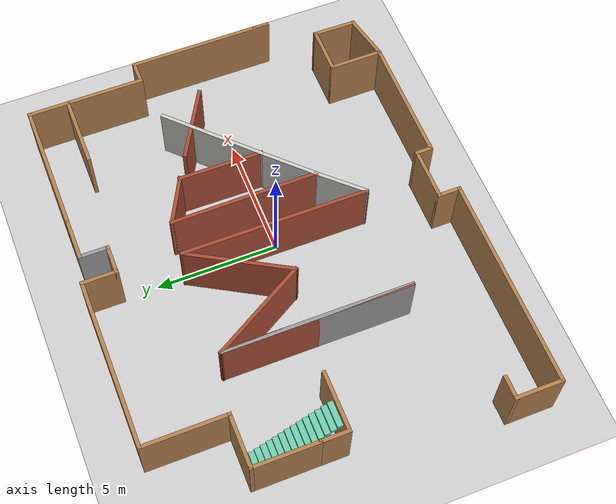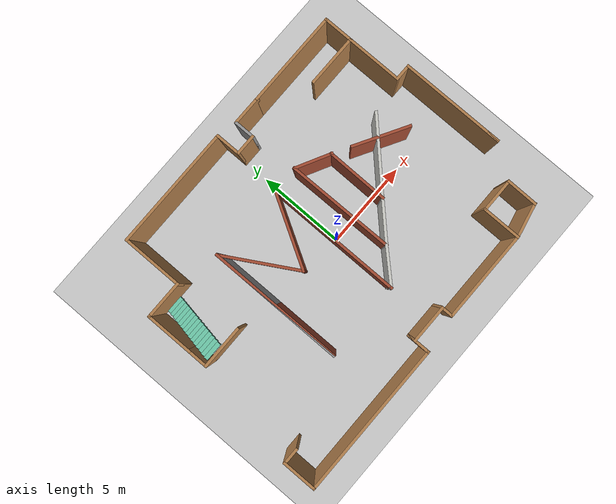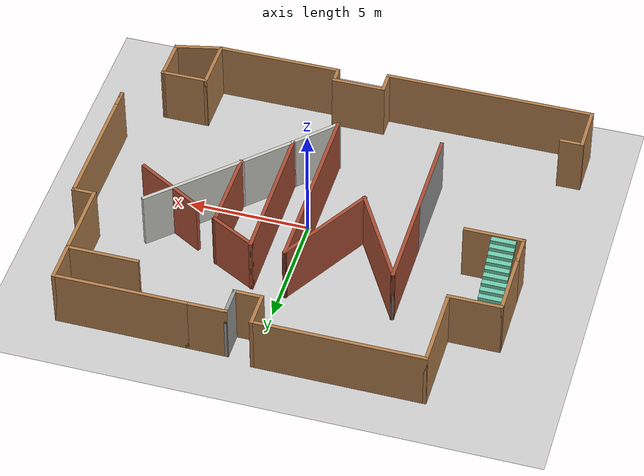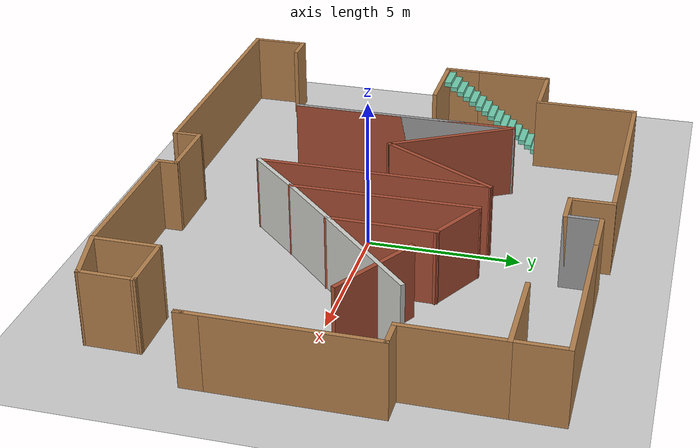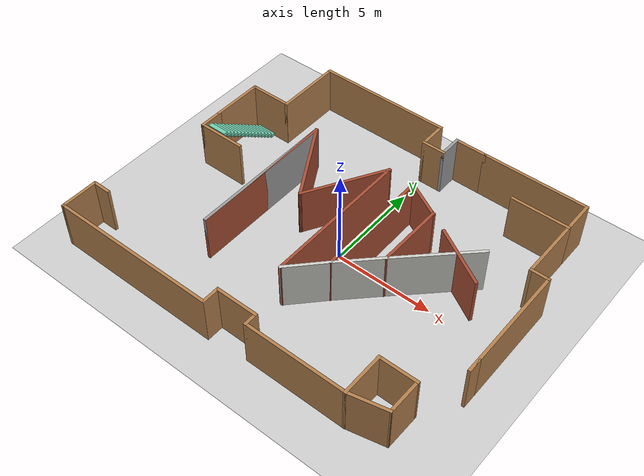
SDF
<sdf version="1.6">
 <world name="MAZE_MDX_MUHD">
  <model name="ground_plane">
   <static>1</static>
   <link name="link">
    <collision name="collision">
     <geometry><plane><normal>0 0 1</normal><size>100 100</size></plane></geometry>
     <surface>
      <contact><collide_bitmask>65535</collide_bitmask></contact>
      <friction><ode><mu>100</mu><mu2>50</mu2></ode></friction>
     </surface>
    </collision>
    <visual name="visual">
     <cast_shadows>0</cast_shadows>
     <geometry><plane><normal>0 0 1</normal><size>100 100</size></plane></geometry>
     <material>
      <script><uri>file://media/materials/scripts/gazebo.material</uri><name>Gazebo/Grey</name></script>
     </material>
    </visual>
   </link>
  </model>
  <light name="sun" type="directional">
   <pose>0 0 10 0 -0 0</pose>
   <diffuse>0.8 0.8 0.8 1</diffuse>
   <specular>0.2 0.2 0.2 1</specular>
   <attenuation>
    <range>1000</range>
    <constant>0.9</constant>
    <linear>0.01</linear>
    <quadratic>0.001</quadratic>
   </attenuation>
   <direction>-0.5 0.1 -0.9</direction>
  </light>
  <gravity>0 0 -9.8</gravity>
  <magnetic_field>6e-06 2.3e-05 -4.2e-05</magnetic_field>
  <atmosphere type="adiabatic"/>
  <physics name="default_physics" default="0" type="ode">
   <max_step_size>0.001</max_step_size>
   <real_time_factor>1</real_time_factor>
   <real_time_update_rate>1000</real_time_update_rate>
  </physics>
  <scene><ambient>0.4 0.4 0.4 1</ambient><background>0.7 0.7 0.7 1</background><shadows>1</shadows></scene>
  <audio><device>default</device></audio>
  <spherical_coordinates>
   <surface_model>EARTH_WGS84</surface_model>
   <latitude_deg>0</latitude_deg>
   <longitude_deg>0</longitude_deg>
   <elevation>0</elevation>
   <heading_deg>0</heading_deg>
  </spherical_coordinates>
  <model name="MDX_Maze">
   <pose>-0.58511 0.338749 0 0 -0 0</pose>
   <link name="Stairs_0">
    <visual name="Stairs_0_Visual_0">
     <pose>-7.65762 3.89363 0.083333 0 -0 0</pose>
     <geometry><box><size>1 0.233333 0.166667</size></box></geometry>
     <material>
      <script><uri>file://media/materials/scripts/gazebo.material</uri><name>Gazebo/Grey</name></script>
      <ambient>0.435294 0.796078 0.67451 1</ambient>
     </material>
     <meta><layer>0</layer></meta>
    </visual>
    <collision name="Stairs_0_Collision_0">
     <geometry><box><size>1 0.233333 0.166667</size></box></geometry>
     <pose>-7.65762 3.89363 0.083333 0 -0 0</pose>
    </collision>
    <visual name="Stairs_0_Visual_1">
     <pose>-7.65762 3.6603 0.25 0 -0 0</pose>
     <geometry><box><size>1 0.233333 0.166667</size></box></geometry>
     <material>
      <script><uri>file://media/materials/scripts/gazebo.material</uri><name>Gazebo/Grey</name></script>
      <ambient>0.435294 0.796078 0.67451 1</ambient>
     </material>
     <meta><layer>0</layer></meta>
    </visual>
    <collision name="Stairs_0_Collision_1">
     <geometry><box><size>1 0.233333 0.166667</size></box></geometry>
     <pose>-7.65762 3.6603 0.25 0 -0 0</pose>
    </collision>
    <visual name="Stairs_0_Visual_2">
     <pose>-7.65762 3.42696 0.416667 0 -0 0</pose>
     <geometry><box><size>1 0.233333 0.166667</size></box></geometry>
     <material>
      <script><uri>file://media/materials/scripts/gazebo.material</uri><name>Gazebo/Grey</name></script>
      <ambient>0.435294 0.796078 0.67451 1</ambient>
     </material>
     <meta><layer>0</layer></meta>
    </visual>
    <collision name="Stairs_0_Collision_2">
     <geometry><box><size>1 0.233333 0.166667</size></box></geometry>
     <pose>-7.65762 3.42696 0.416667 0 -0 0</pose>
    </collision>
    <visual name="Stairs_0_Visual_3">
     <pose>-7.65762 3.19363 0.583333 0 -0 0</pose>
     <geometry><box><size>1 0.233333 0.166667</size></box></geometry>
     <material>
      <script><uri>file://media/materials/scripts/gazebo.material</uri><name>Gazebo/Grey</name></script>
      <ambient>0.435294 0.796078 0.67451 1</ambient>
     </material>
     <meta><layer>0</layer></meta>
    </visual>
    <collision name="Stairs_0_Collision_3">
     <geometry><box><size>1 0.233333 0.166667</size></box></geometry>
     <pose>-7.65762 3.19363 0.583333 0 -0 0</pose>
    </collision>
    <visual name="Stairs_0_Visual_4">
     <pose>-7.65762 2.9603 0.75 0 -0 0</pose>
     <geometry><box><size>1 0.233333 0.166667</size></box></geometry>
     <material>
      <script><uri>file://media/materials/scripts/gazebo.material</uri><name>Gazebo/Grey</name></script>
      <ambient>0.435294 0.796078 0.67451 1</ambient>
     </material>
     <meta><layer>0</layer></meta>
    </visual>
    <collision name="Stairs_0_Collision_4">
     <geometry><box><size>1 0.233333 0.166667</size></box></geometry>
     <pose>-7.65762 2.9603 0.75 0 -0 0</pose>
    </collision>
    <visual name="Stairs_0_Visual_5">
     <pose>-7.65762 2.72696 0.916667 0 -0 0</pose>
     <geometry><box><size>1 0.233333 0.166667</size></box></geometry>
     <material>
      <script><uri>file://media/materials/scripts/gazebo.material</uri><name>Gazebo/Grey</name></script>
      <ambient>0.435294 0.796078 0.67451 1</ambient>
     </material>
     <meta><layer>0</layer></meta>
    </visual>
    <collision name="Stairs_0_Collision_5">
     <geometry><box><size>1 0.233333 0.166667</size></box></geometry>
     <pose>-7.65762 2.72696 0.916667 0 -0 0</pose>
    </collision>
    <visual name="Stairs_0_Visual_6">
     <pose>-7.65762 2.49363 1.08333 0 -0 0</pose>
     <geometry><box><size>1 0.233333 0.166667</size></box></geometry>
     <material>
      <script><uri>file://media/materials/scripts/gazebo.material</uri><name>Gazebo/Grey</name></script>
      <ambient>0.435294 0.796078 0.67451 1</ambient>
     </material>
     <meta><layer>0</layer></meta>
    </visual>
    <collision name="Stairs_0_Collision_6">
     <geometry><box><size>1 0.233333 0.166667</size></box></geometry>
     <pose>-7.65762 2.49363 1.08333 0 -0 0</pose>
    </collision>
    <visual name="Stairs_0_Visual_7">
     <pose>-7.65762 2.2603 1.25 0 -0 0</pose>
     <geometry><box><size>1 0.233333 0.166667</size></box></geometry>
     <material>
      <script><uri>file://media/materials/scripts/gazebo.material</uri><name>Gazebo/Grey</name></script>
      <ambient>0.435294 0.796078 0.67451 1</ambient>
     </material>
     <meta><layer>0</layer></meta>
    </visual>
    <collision name="Stairs_0_Collision_7">
     <geometry><box><size>1 0.233333 0.166667</size></box></geometry>
     <pose>-7.65762 2.2603 1.25 0 -0 0</pose>
    </collision>
    <visual name="Stairs_0_Visual_8">
     <pose>-7.65762 2.02696 1.41667 0 -0 0</pose>
     <geometry><box><size>1 0.233333 0.166667</size></box></geometry>
     <material>
      <script><uri>file://media/materials/scripts/gazebo.material</uri><name>Gazebo/Grey</name></script>
      <ambient>0.435294 0.796078 0.67451 1</ambient>
     </material>
     <meta><layer>0</layer></meta>
    </visual>
    <collision name="Stairs_0_Collision_8">
     <geometry><box><size>1 0.233333 0.166667</size></box></geometry>
     <pose>-7.65762 2.02696 1.41667 0 -0 0</pose>
    </collision>
    <visual name="Stairs_0_Visual_9">
     <pose>-7.65762 1.79363 1.58333 0 -0 0</pose>
     <geometry><box><size>1 0.233333 0.166667</size></box></geometry>
     <material>
      <script><uri>file://media/materials/scripts/gazebo.material</uri><name>Gazebo/Grey</name></script>
      <ambient>0.435294 0.796078 0.67451 1</ambient>
     </material>
     <meta><layer>0</layer></meta>
    </visual>
    <collision name="Stairs_0_Collision_9">
     <geometry><box><size>1 0.233333 0.166667</size></box></geometry>
     <pose>-7.65762 1.79363 1.58333 0 -0 0</pose>
    </collision>
    <visual name="Stairs_0_Visual_10">
     <pose>-7.65762 1.5603 1.75 0 -0 0</pose>
     <geometry><box><size>1 0.233333 0.166667</size></box></geometry>
     <material>
      <script><uri>file://media/materials/scripts/gazebo.material</uri><name>Gazebo/Grey</name></script>
      <ambient>0.435294 0.796078 0.67451 1</ambient>
     </material>
     <meta><layer>0</layer></meta>
    </visual>
    <collision name="Stairs_0_Collision_10">
     <geometry><box><size>1 0.233333 0.166667</size></box></geometry>
     <pose>-7.65762 1.5603 1.75 0 -0 0</pose>
    </collision>
    <visual name="Stairs_0_Visual_11">
     <pose>-7.65762 1.32696 1.91667 0 -0 0</pose>
     <geometry><box><size>1 0.233333 0.166667</size></box></geometry>
     <material>
      <script><uri>file://media/materials/scripts/gazebo.material</uri><name>Gazebo/Grey</name></script>
      <ambient>0.435294 0.796078 0.67451 1</ambient>
     </material>
     <meta><layer>0</layer></meta>
    </visual>
    <collision name="Stairs_0_Collision_11">
     <geometry><box><size>1 0.233333 0.166667</size></box></geometry>
     <pose>-7.65762 1.32696 1.91667 0 -0 0</pose>
    </collision>
    <visual name="Stairs_0_Visual_12">
     <pose>-7.65762 1.09363 2.08333 0 -0 0</pose>
     <geometry><box><size>1 0.233333 0.166667</size></box></geometry>
     <material>
      <script><uri>file://media/materials/scripts/gazebo.material</uri><name>Gazebo/Grey</name></script>
      <ambient>0.435294 0.796078 0.67451 1</ambient>
     </material>
     <meta><layer>0</layer></meta>
    </visual>
    <collision name="Stairs_0_Collision_12">
     <geometry><box><size>1 0.233333 0.166667</size></box></geometry>
     <pose>-7.65762 1.09363 2.08333 0 -0 0</pose>
    </collision>
    <visual name="Stairs_0_Visual_13">
     <pose>-7.65762 0.860297 2.25 0 -0 0</pose>
     <geometry><box><size>1 0.233333 0.166667</size></box></geometry>
     <material>
      <script><uri>file://media/materials/scripts/gazebo.material</uri><name>Gazebo/Grey</name></script>
      <ambient>0.435294 0.796078 0.67451 1</ambient>
     </material>
     <meta><layer>0</layer></meta>
    </visual>
    <collision name="Stairs_0_Collision_13">
     <geometry><box><size>1 0.233333 0.166667</size></box></geometry>
     <pose>-7.65762 0.860297 2.25 0 -0 0</pose>
    </collision>
    <visual name="Stairs_0_Visual_14">
     <pose>-7.65762 0.626963 2.41667 0 -0 0</pose>
     <geometry><box><size>1 0.233333 0.166667</size></box></geometry>
     <material>
      <script><uri>file://media/materials/scripts/gazebo.material</uri><name>Gazebo/Grey</name></script>
      <ambient>0.435294 0.796078 0.67451 1</ambient>
     </material>
     <meta><layer>0</layer></meta>
    </visual>
    <collision name="Stairs_0_Collision_14">
     <geometry><box><size>1 0.233333 0.166667</size></box></geometry>
     <pose>-7.65762 0.626963 2.41667 0 -0 0</pose>
    </collision>
   </link>
   <link name="Wall_10">
    <collision name="Wall_10_Collision">
     <geometry><box><size>7 0.15 2.5</size></box></geometry>
     <pose>0 0 1.25 0 -0 0</pose>
    </collision>
    <visual name="Wall_10_Visual">
     <pose>0 0 1.25 0 -0 0</pose>
     <geometry><box><size>7 0.15 2.5</size></box></geometry>
     <material>
      <script><uri>file://media/materials/scripts/gazebo.material</uri><name>Gazebo/Wood</name></script>
      <ambient>1 1 1 1</ambient>
     </material>
     <meta><layer>0</layer></meta>
    </visual>
    <pose>-2.8869 7.43809 0 0 -0 0</pose>
   </link>
   <link name="Wall_11">
    <collision name="Wall_11_Collision">
     <geometry><box><size>1.5 0.15 2.5</size></box></geometry>
     <pose>0 0 1.25 0 -0 0</pose>
    </collision>
    <visual name="Wall_11_Visual">
     <pose>0 0 1.25 0 -0 0</pose>
     <geometry><box><size>1.5 0.15 2.5</size></box></geometry>
     <material>
      <script><uri>file://media/materials/scripts/gazebo.material</uri><name>Gazebo/Wood</name></script>
      <ambient>1 1 1 1</ambient>
     </material>
     <meta><layer>0</layer></meta>
    </visual>
    <pose>0.538101 6.76309 0 0 -0 -1.5708</pose>
   </link>
   <link name="Wall_12">
    <collision name="Wall_12_Collision">
     <geometry><box><size>1.25 0.15 2.5</size></box></geometry>
     <pose>0 0 1.25 0 -0 0</pose>
    </collision>
    <visual name="Wall_12_Visual">
     <pose>0 0 1.25 0 -0 0</pose>
     <geometry><box><size>1.25 0.15 2.5</size></box></geometry>
     <material>
      <script><uri>file://media/materials/scripts/gazebo.material</uri><name>Gazebo/Wood</name></script>
      <ambient>1 1 1 1</ambient>
     </material>
     <meta><layer>0</layer></meta>
    </visual>
    <pose>1.0881 6.08809 0 0 -0 0</pose>
   </link>
   <link name="Wall_13">
    <collision name="Wall_13_Collision">
     <geometry><box><size>1.25 0.15 2.5</size></box></geometry>
     <pose>0 0 1.25 0 -0 0</pose>
    </collision>
    <visual name="Wall_13_Visual">
     <pose>0 0 1.25 0 -0 0</pose>
     <geometry><box><size>1.25 0.15 2.5</size></box></geometry>
     <material>
      <script><uri>file://media/materials/scripts/gazebo.material</uri><name>Gazebo/Grey</name></script>
      <ambient>1 1 1 1</ambient>
     </material>
     <meta><layer>0</layer></meta>
    </visual>
    <pose>1.6381 6.63809 0 0 -0 1.5708</pose>
   </link>
   <link name="Wall_14">
    <collision name="Wall_14_Collision">
     <geometry><box><size>1.75 0.15 2.5</size></box></geometry>
     <pose>0 0 1.25 0 -0 0</pose>
    </collision>
    <visual name="Wall_14_Visual">
     <pose>0 0 1.25 0 -0 0</pose>
     <geometry><box><size>1.75 0.15 2.5</size></box></geometry>
     <material>
      <script><uri>file://media/materials/scripts/gazebo.material</uri><name>Gazebo/Wood</name></script>
      <ambient>1 1 1 1</ambient>
     </material>
     <meta><layer>0</layer></meta>
    </visual>
    <pose>2.4381 7.18809 0 0 -0 0</pose>
   </link>
   <link name="Wall_15">
    <collision name="Wall_15_Collision">
     <geometry><box><size>5.5 0.15 2.5</size></box></geometry>
     <pose>0 0 1.25 0 -0 0</pose>
    </collision>
    <visual name="Wall_15_Visual">
     <pose>0 0 1.25 0 -0 0</pose>
     <geometry><box><size>5.5 0.15 2.5</size></box></geometry>
     <material>
      <script><uri>file://media/materials/scripts/gazebo.material</uri><name>Gazebo/Wood</name></script>
      <ambient>1 1 1 1</ambient>
     </material>
     <meta><layer>0</layer></meta>
    </visual>
    <pose>5.9131 7.18809 0 0 -0 0</pose>
   </link>
   <link name="Wall_16">
    <collision name="Wall_16_Collision">
     <geometry><box><size>1.75 0.15 2.5</size></box></geometry>
     <pose>0 0 1.25 0 -0 0</pose>
    </collision>
    <visual name="Wall_16_Visual">
     <pose>0 0 1.25 0 -0 0</pose>
     <geometry><box><size>1.75 0.15 2.5</size></box></geometry>
     <material>
      <script><uri>file://media/materials/scripts/gazebo.material</uri><name>Gazebo/Wood</name></script>
      <ambient>1 1 1 1</ambient>
     </material>
     <meta><layer>0</layer></meta>
    </visual>
    <pose>8.5881 6.38809 0 0 -0 -1.5708</pose>
   </link>
   <link name="Wall_17">
    <collision name="Wall_17_Collision">
     <geometry><box><size>3 0.15 2.5</size></box></geometry>
     <pose>0 0 1.25 0 -0 0</pose>
    </collision>
    <visual name="Wall_17_Visual">
     <pose>0 0 1.25 0 -0 0</pose>
     <geometry><box><size>3 0.15 2.5</size></box></geometry>
     <material>
      <script><uri>file://media/materials/scripts/gazebo.material</uri><name>Gazebo/Wood</name></script>
      <ambient>1 1 1 1</ambient>
     </material>
     <meta><layer>0</layer></meta>
    </visual>
    <pose>7.1631 5.58809 0 0 -0 3.14159</pose>
   </link>
   <link name="Wall_19">
    <collision name="Wall_19_Collision">
     <geometry><box><size>3.25 0.15 2.5</size></box></geometry>
     <pose>0 0 1.25 0 -0 0</pose>
    </collision>
    <visual name="Wall_19_Visual">
     <pose>0 0 1.25 0 -0 0</pose>
     <geometry><box><size>3.25 0.15 2.5</size></box></geometry>
     <material>
      <script><uri>file://media/materials/scripts/gazebo.material</uri><name>Gazebo/Wood</name></script>
      <ambient>1 1 1 1</ambient>
     </material>
     <meta><layer>0</layer></meta>
    </visual>
    <pose>8.5881 4.03808 0 0 -0 -1.5708</pose>
   </link>
   <link name="Wall_20">
    <collision name="Wall_20_Collision">
     <geometry><box><size>1 0.15 2.5</size></box></geometry>
     <pose>0 0 1.25 0 -0 0</pose>
    </collision>
    <visual name="Wall_20_Visual">
     <pose>0 0 1.25 0 -0 0</pose>
     <geometry><box><size>1 0.15 2.5</size></box></geometry>
     <material>
      <script><uri>file://media/materials/scripts/gazebo.material</uri><name>Gazebo/Wood</name></script>
      <ambient>1 1 1 1</ambient>
     </material>
     <meta><layer>0</layer></meta>
    </visual>
    <pose>9.0131 2.48809 0 0 -0 0</pose>
   </link>
   <link name="Wall_21">
    <collision name="Wall_21_Collision">
     <geometry><box><size>6 0.15 2.5</size></box></geometry>
     <pose>0 0 1.25 0 -0 0</pose>
    </collision>
    <visual name="Wall_21_Visual">
     <pose>0 0 1.25 0 -0 0</pose>
     <geometry><box><size>6 0.15 2.5</size></box></geometry>
     <material>
      <script><uri>file://media/materials/scripts/gazebo.material</uri><name>Gazebo/Wood</name></script>
      <ambient>1 1 1 1</ambient>
     </material>
     <meta><layer>0</layer></meta>
    </visual>
    <pose>9.4381 -0.436915 0 0 -0 -1.5708</pose>
   </link>
   <link name="Wall_22">
    <collision name="Wall_22_Collision">
     <geometry><box><size>0.75 0.15 2.5</size></box></geometry>
     <pose>0 0 1.25 0 -0 0</pose>
    </collision>
    <visual name="Wall_22_Visual">
     <pose>0 0 1.25 0 -0 0</pose>
     <geometry><box><size>0.75 0.15 2.5</size></box></geometry>
     <material>
      <script><uri>file://media/materials/scripts/gazebo.material</uri><name>Gazebo/Wood</name></script>
      <ambient>1 1 1 1</ambient>
     </material>
     <meta><layer>0</layer></meta>
    </visual>
    <pose>9.4381 -3.06191 0 0 -0 1.5708</pose>
   </link>
   <link name="Wall_25">
    <collision name="Wall_25_Collision">
     <geometry><box><size>1 0.15 2.5</size></box></geometry>
     <pose>0 0 1.25 0 -0 0</pose>
    </collision>
    <visual name="Wall_25_Visual">
     <pose>0 0 1.25 0 -0 0</pose>
     <geometry><box><size>1 0.15 2.5</size></box></geometry>
     <material>
      <script><uri>file://media/materials/scripts/gazebo.material</uri><name>Gazebo/Wood</name></script>
      <ambient>1 1 1 1</ambient>
     </material>
     <meta><layer>0</layer></meta>
    </visual>
    <pose>-9.0131 -5.58809 0 0 -0 3.14159</pose>
   </link>
   <link name="Wall_26">
    <collision name="Wall_26_Collision">
     <geometry><box><size>2 0.15 2.5</size></box></geometry>
     <pose>0 0 1.25 0 -0 0</pose>
    </collision>
    <visual name="Wall_26_Visual">
     <pose>0 0 1.25 0 -0 0</pose>
     <geometry><box><size>2 0.15 2.5</size></box></geometry>
     <material>
      <script><uri>file://media/materials/scripts/gazebo.material</uri><name>Gazebo/Wood</name></script>
      <ambient>1 1 1 1</ambient>
     </material>
     <meta><layer>0</layer></meta>
    </visual>
    <pose>-9.4381 -6.51309 0 0 -0 -1.5708</pose>
   </link>
   <link name="Wall_27">
    <collision name="Wall_27_Collision">
     <geometry><box><size>8.75 0.15 2.5</size></box></geometry>
     <pose>0 0 1.25 0 -0 0</pose>
    </collision>
    <visual name="Wall_27_Visual">
     <pose>0 0 1.25 0 -0 0</pose>
     <geometry><box><size>8.75 0.15 2.5</size></box></geometry>
     <material>
      <script><uri>file://media/materials/scripts/gazebo.material</uri><name>Gazebo/Wood</name></script>
      <ambient>1 1 1 1</ambient>
     </material>
     <meta><layer>0</layer></meta>
    </visual>
    <pose>-5.1381 -7.43809 0 0 -0 0</pose>
   </link>
   <link name="Wall_28">
    <collision name="Wall_28_Collision">
     <geometry><box><size>1 0.15 2.5</size></box></geometry>
     <pose>0 0 1.25 0 -0 0</pose>
    </collision>
    <visual name="Wall_28_Visual">
     <pose>0 0 1.25 0 -0 0</pose>
     <geometry><box><size>1 0.15 2.5</size></box></geometry>
     <material>
      <script><uri>file://media/materials/scripts/gazebo.material</uri><name>Gazebo/Wood</name></script>
      <ambient>1 1 1 1</ambient>
     </material>
     <meta><layer>0</layer></meta>
    </visual>
    <pose>-0.838102 -7.01309 0 0 -0 1.5708</pose>
   </link>
   <link name="Wall_29">
    <collision name="Wall_29_Collision">
     <geometry><box><size>2.25 0.15 2.5</size></box></geometry>
     <pose>0 0 1.25 0 -0 0</pose>
    </collision>
    <visual name="Wall_29_Visual">
     <pose>0 0 1.25 0 -0 0</pose>
     <geometry><box><size>2.25 0.15 2.5</size></box></geometry>
     <material>
      <script><uri>file://media/materials/scripts/gazebo.material</uri><name>Gazebo/Wood</name></script>
      <ambient>1 1 1 1</ambient>
     </material>
     <meta><layer>0</layer></meta>
    </visual>
    <pose>0.211898 -6.58809 0 0 -0 0</pose>
   </link>
   <link name="Wall_30">
    <collision name="Wall_30_Collision">
     <geometry><box><size>0.75 0.15 2.5</size></box></geometry>
     <pose>0 0 1.25 0 -0 0</pose>
    </collision>
    <visual name="Wall_30_Visual">
     <pose>0 0 1.25 0 -0 0</pose>
     <geometry><box><size>0.75 0.15 2.5</size></box></geometry>
     <material>
      <script><uri>file://media/materials/scripts/gazebo.material</uri><name>Gazebo/Wood</name></script>
      <ambient>1 1 1 1</ambient>
     </material>
     <meta><layer>0</layer></meta>
    </visual>
    <pose>1.2619 -6.88809 0 0 -0 -1.5708</pose>
   </link>
   <link name="Wall_31">
    <collision name="Wall_31_Collision">
     <geometry><box><size>5.25 0.15 2.5</size></box></geometry>
     <pose>0 0 1.25 0 -0 0</pose>
    </collision>
    <visual name="Wall_31_Visual">
     <pose>0 0 1.25 0 -0 0</pose>
     <geometry><box><size>5.25 0.15 2.5</size></box></geometry>
     <material>
      <script><uri>file://media/materials/scripts/gazebo.material</uri><name>Gazebo/Wood</name></script>
      <ambient>1 1 1 1</ambient>
     </material>
     <meta><layer>0</layer></meta>
    </visual>
    <pose>3.8119 -7.18809 0 0 -0 0</pose>
   </link>
   <link name="Wall_32">
    <collision name="Wall_32_Collision">
     <geometry><box><size>2.25 0.15 2.5</size></box></geometry>
     <pose>0 0 1.25 0 -0 0</pose>
    </collision>
    <visual name="Wall_32_Visual">
     <pose>0 0 1.25 0 -0 0</pose>
     <geometry><box><size>2.25 0.15 2.5</size></box></geometry>
     <material>
      <script><uri>file://media/materials/scripts/gazebo.material</uri><name>Gazebo/Wood</name></script>
      <ambient>1 1 1 1</ambient>
     </material>
     <meta><layer>0</layer></meta>
    </visual>
    <pose>6.3619 -6.13809 0 0 -0 1.5708</pose>
   </link>
   <link name="Wall_33">
    <collision name="Wall_33_Collision">
     <geometry><box><size>2 0.15 2.5</size></box></geometry>
     <pose>0 0 1.25 0 -0 0</pose>
    </collision>
    <visual name="Wall_33_Visual">
     <pose>0 0 1.25 0 -0 0</pose>
     <geometry><box><size>2 0.15 2.5</size></box></geometry>
     <material>
      <script><uri>file://media/materials/scripts/gazebo.material</uri><name>Gazebo/Wood</name></script>
      <ambient>1 1 1 1</ambient>
     </material>
     <meta><layer>0</layer></meta>
    </visual>
    <pose>7.2869 -5.08809 0 0 -0 0</pose>
   </link>
   <link name="Wall_34">
    <collision name="Wall_34_Collision">
     <geometry><box><size>1.83866 0.15 2.5</size></box></geometry>
     <pose>0 0 1.25 0 -0 0</pose>
    </collision>
    <visual name="Wall_34_Visual">
     <pose>0 0 1.25 0 -0 0</pose>
     <geometry><box><size>1.83866 0.15 2.5</size></box></geometry>
     <material>
      <script><uri>file://media/materials/scripts/gazebo.material</uri><name>Gazebo/Wood</name></script>
      <ambient>1 1 1 1</ambient>
     </material>
     <meta><layer>0</layer></meta>
    </visual>
    <pose>8.20245 -5.93236 0 0 -0 -1.58199</pose>
   </link>
   <link name="Wall_38">
    <collision name="Wall_38_Collision">
     <geometry><box><size>2.02676 0.15 2.5</size></box></geometry>
     <pose>0 0 1.25 0 -0 0</pose>
    </collision>
    <visual name="Wall_38_Visual">
     <pose>0 0 1.25 0 -0 0</pose>
     <geometry><box><size>2.02676 0.15 2.5</size></box></geometry>
     <material>
      <script><uri>file://media/materials/scripts/gazebo.material</uri><name>Gazebo/Wood</name></script>
      <ambient>1 1 1 1</ambient>
     </material>
     <meta><layer>0</layer></meta>
    </visual>
    <pose>7.27745 -6.98236 0 0 -0 -2.92057</pose>
   </link>
   <link name="Wall_40">
    <collision name="Wall_40_Collision">
     <geometry><box><size>1.25 0.15 2.5</size></box></geometry>
     <pose>0 0 1.25 0 -0 0</pose>
    </collision>
    <visual name="Wall_40_Visual">
     <pose>0 0 1.25 0 -0 0</pose>
     <geometry><box><size>1.25 0.15 2.5</size></box></geometry>
     <material>
      <script><uri>file://media/materials/scripts/gazebo.material</uri><name>Gazebo/Wood</name></script>
      <ambient>1 1 1 1</ambient>
     </material>
     <meta><layer>0</layer></meta>
    </visual>
    <pose>-8.4119 0.938085 0 0 -0 -1.5708</pose>
   </link>
   <link name="Wall_41">
    <collision name="Wall_41_Collision">
     <geometry><box><size>2.5 0.15 2.5</size></box></geometry>
     <pose>0 0 1.25 0 -0 0</pose>
    </collision>
    <visual name="Wall_41_Visual">
     <pose>0 0 1.25 0 -0 0</pose>
     <geometry><box><size>2.5 0.15 2.5</size></box></geometry>
     <material>
      <script><uri>file://media/materials/scripts/gazebo.material</uri><name>Gazebo/Wood</name></script>
      <ambient>1 1 1 1</ambient>
     </material>
     <meta><layer>0</layer></meta>
    </visual>
    <pose>-7.2369 0.388085 0 0 -0 0</pose>
   </link>
   <link name="Wall_43">
    <collision name="Wall_43_Collision">
     <geometry><box><size>7.75 0.15 2.5</size></box></geometry>
     <pose>0 0 1.25 0 -0 0</pose>
    </collision>
    <visual name="Wall_43_Visual">
     <pose>0 0 1.25 0 -0 0</pose>
     <geometry><box><size>7.75 0.15 2.5</size></box></geometry>
     <material>
      <script><uri>file://media/materials/scripts/gazebo.material</uri><name>Gazebo/Grey</name></script>
      <ambient>1 1 1 1</ambient>
     </material>
     <meta><layer>0</layer></meta>
    </visual>
    <pose>-3.97617 -0.245125 0 0 -0 -1.5708</pose>
   </link>
   <link name="Wall_44">
    <collision name="Wall_44_Collision">
     <geometry><box><size>7.75 0.15 2.5</size></box></geometry>
     <pose>0 0 1.25 0 -0 0</pose>
    </collision>
    <visual name="Wall_44_Visual">
     <pose>0 0 1.25 0 -0 0</pose>
     <geometry><box><size>7.75 0.15 2.5</size></box></geometry>
     <material>
      <script><uri>file://media/materials/scripts/gazebo.material</uri><name>Gazebo/Bricks</name></script>
      <ambient>1 1 1 1</ambient>
     </material>
     <meta><layer>0</layer></meta>
    </visual>
    <pose>-3.97617 -0.245125 0 0 -0 1.5708</pose>
   </link>
   <link name="Wall_45">
    <collision name="Wall_45_Collision">
     <geometry><box><size>4.5 0.15 2.5</size></box></geometry>
     <pose>0 0 1.25 0 -0 0</pose>
    </collision>
    <visual name="Wall_45_Visual">
     <pose>0 0 1.25 0 -0 0</pose>
     <geometry><box><size>4.5 0.15 2.5</size></box></geometry>
     <material>
      <script><uri>file://media/materials/scripts/gazebo.material</uri><name>Gazebo/Bricks</name></script>
      <ambient>1 1 1 1</ambient>
     </material>
     <meta><layer>0</layer></meta>
    </visual>
    <pose>-2.88867 1.67127 0 0 -0 -1.0472</pose>
   </link>
   <link name="Wall_46">
    <collision name="Wall_46_Collision">
     <geometry><box><size>4.5 0.15 2.5</size></box></geometry>
     <pose>0 0 1.25 0 -0 0</pose>
    </collision>
    <visual name="Wall_46_Visual">
     <pose>0 0 1.25 0 -0 0</pose>
     <geometry><box><size>4.5 0.15 2.5</size></box></geometry>
     <material>
      <script><uri>file://media/materials/scripts/gazebo.material</uri><name>Gazebo/Bricks</name></script>
      <ambient>1 1 1 1</ambient>
     </material>
     <meta><layer>0</layer></meta>
    </visual>
    <pose>-0.713666 1.67127 0 0 -0 1.0472</pose>
   </link>
   <link name="Wall_47">
    <collision name="Wall_47_Collision">
     <geometry><box><size>7.75 0.15 2.5</size></box></geometry>
     <pose>0 0 1.25 0 -0 0</pose>
    </collision>
    <visual name="Wall_47_Visual">
     <pose>0 0 1.25 0 -0 0</pose>
     <geometry><box><size>7.75 0.15 2.5</size></box></geometry>
     <material>
      <script><uri>file://media/materials/scripts/gazebo.material</uri><name>Gazebo/Bricks</name></script>
      <ambient>1 1 1 1</ambient>
     </material>
     <meta><layer>0</layer></meta>
    </visual>
    <pose>0.373834 -0.245125 0 0 -0 -1.5708</pose>
   </link>
   <link name="Wall_5">
    <collision name="Wall_5_Collision">
     <geometry><box><size>2.75 0.15 2.5</size></box></geometry>
     <pose>0 0 1.25 0 -0 0</pose>
    </collision>
    <visual name="Wall_5_Visual">
     <pose>0 0 1.25 0 -0 0</pose>
     <geometry><box><size>2.75 0.15 2.5</size></box></geometry>
     <material>
      <script><uri>file://media/materials/scripts/gazebo.material</uri><name>Gazebo/Wood</name></script>
      <ambient>1 1 1 1</ambient>
     </material>
     <meta><layer>0</layer></meta>
    </visual>
    <pose>-8.4119 2.78809 0 0 -0 -1.5708</pose>
   </link>
   <link name="Wall_50">
    <collision name="Wall_50_Collision">
     <geometry><box><size>6.13172 0.15 2.5</size></box></geometry>
     <pose>0 0 1.25 0 -0 0</pose>
    </collision>
    <visual name="Wall_50_Visual">
     <pose>0 0 1.25 0 -0 0</pose>
     <geometry><box><size>6.13172 0.15 2.5</size></box></geometry>
     <material>
      <script><uri>file://media/materials/scripts/gazebo.material</uri><name>Gazebo/Bricks</name></script>
      <ambient>1 1 1 1</ambient>
     </material>
     <meta><layer>0</layer></meta>
    </visual>
    <pose>1.80958 0.481862 0 0 -0 1.57818</pose>
   </link>
   <link name="Wall_51">
    <collision name="Wall_51_Collision">
     <geometry><box><size>2.13583 0.15 2.5</size></box></geometry>
     <pose>0 0 1.25 0 -0 0</pose>
    </collision>
    <visual name="Wall_51_Visual">
     <pose>0 0 1.25 0 -0 0</pose>
     <geometry><box><size>2.13583 0.15 2.5</size></box></geometry>
     <material>
      <script><uri>file://media/materials/scripts/gazebo.material</uri><name>Gazebo/Bricks</name></script>
      <ambient>1 1 1 1</ambient>
     </material>
     <meta><layer>0</layer></meta>
    </visual>
    <pose>2.6884 2.98537 0 0 -0 -0.486402</pose>
   </link>
   <link name="Wall_52">
    <collision name="Wall_52_Collision">
     <geometry><box><size>3.54195 0.15 2.5</size></box></geometry>
     <pose>0 0 1.25 0 -0 0</pose>
    </collision>
    <visual name="Wall_52_Visual">
     <pose>0 0 1.25 0 -0 0</pose>
     <geometry><box><size>3.54195 0.15 2.5</size></box></geometry>
     <material>
      <script><uri>file://media/materials/scripts/gazebo.material</uri><name>Gazebo/Bricks</name></script>
      <ambient>1 1 1 1</ambient>
     </material>
     <meta><layer>0</layer></meta>
    </visual>
    <pose>3.52825 0.848577 0 0 -0 -1.57951</pose>
   </link>
   <link name="Wall_65">
    <collision name="Wall_65_Collision">
     <geometry><box><size>2.5 0.15 2.5</size></box></geometry>
     <pose>0 0 1.25 0 -0 0</pose>
    </collision>
    <visual name="Wall_65_Visual">
     <pose>0 0 1.25 0 -0 0</pose>
     <geometry><box><size>2.5 0.15 2.5</size></box></geometry>
     <material>
      <script><uri>file://media/materials/scripts/gazebo.material</uri><name>Gazebo/CeilingTiled</name></script>
      <ambient>1 1 1 1</ambient>
     </material>
     <meta><layer>0</layer></meta>
    </visual>
    <pose>2.6625 -1.67807 0 0 -0 0.785398</pose>
   </link>
   <link name="Wall_7">
    <collision name="Wall_7_Collision">
     <geometry><box><size>2.25 0.15 2.5</size></box></geometry>
     <pose>0 0 1.25 0 -0 0</pose>
    </collision>
    <visual name="Wall_7_Visual">
     <pose>0 0 1.25 0 -0 0</pose>
     <geometry><box><size>2.25 0.15 2.5</size></box></geometry>
     <material>
      <script><uri>file://media/materials/scripts/gazebo.material</uri><name>Gazebo/Wood</name></script>
      <ambient>1 1 1 1</ambient>
     </material>
     <meta><layer>0</layer></meta>
    </visual>
    <pose>-7.3619 4.08809 0 0 -0 0</pose>
   </link>
   <link name="Wall_72">
    <collision name="Wall_72_Collision">
     <geometry><box><size>3.25 0.15 2.5</size></box></geometry>
     <pose>0 0 1.25 0 -0 0</pose>
    </collision>
    <visual name="Wall_72_Visual">
     <pose>0 0 1.25 0 -0 0</pose>
     <geometry><box><size>3.25 0.15 2.5</size></box></geometry>
     <material>
      <script><uri>file://media/materials/scripts/gazebo.material</uri><name>Gazebo/Bricks</name></script>
      <ambient>1 1 1 1</ambient>
     </material>
     <meta><layer>0</layer></meta>
    </visual>
    <pose>5.838 1.21937 0 0 -0 -0.523599</pose>
   </link>
   <link name="Wall_74">
    <collision name="Wall_74_Collision">
     <geometry><box><size>2.26782 0.15 2.5</size></box></geometry>
     <pose>0 0 1.25 0 -0 0</pose>
    </collision>
    <visual name="Wall_74_Visual">
     <pose>0 0 1.25 0 -0 0</pose>
     <geometry><box><size>2.26782 0.15 2.5</size></box></geometry>
     <material>
      <script><uri>file://media/materials/scripts/gazebo.material</uri><name>Gazebo/CeilingTiled</name></script>
      <ambient>1 1 1 1</ambient>
     </material>
     <meta><layer>0</layer></meta>
    </visual>
    <pose>1.10274 -3.27702 0 0 -0 0.811574</pose>
   </link>
   <link name="Wall_76">
    <collision name="Wall_76_Collision">
     <geometry><box><size>4.5038 0.15 2.5</size></box></geometry>
     <pose>0 0 1.25 0 -0 0</pose>
    </collision>
    <visual name="Wall_76_Visual">
     <pose>0 0 1.25 0 -0 0</pose>
     <geometry><box><size>4.5038 0.15 2.5</size></box></geometry>
     <material>
      <script><uri>file://media/materials/scripts/gazebo.material</uri><name>Gazebo/CeilingTiled</name></script>
      <ambient>1 1 1 1</ambient>
     </material>
     <meta><layer>0</layer></meta>
    </visual>
    <pose>5.04758 0.677015 0 0 -0 0.775655</pose>
   </link>
   <link name="Wall_9">
    <collision name="Wall_9_Collision">
     <geometry><box><size>3.5 0.15 2.5</size></box></geometry>
     <pose>0 0 1.25 0 -0 0</pose>
    </collision>
    <visual name="Wall_9_Visual">
     <pose>0 0 1.25 0 -0 0</pose>
     <geometry><box><size>3.5 0.15 2.5</size></box></geometry>
     <material>
      <script><uri>file://media/materials/scripts/gazebo.material</uri><name>Gazebo/Wood</name></script>
      <ambient>1 1 1 1</ambient>
     </material>
     <meta><layer>0</layer></meta>
    </visual>
    <pose>-6.3119 5.76309 0 0 -0 1.5708</pose>
   </link>
   <static>1</static>
  </model>
 </world>
</sdf>
